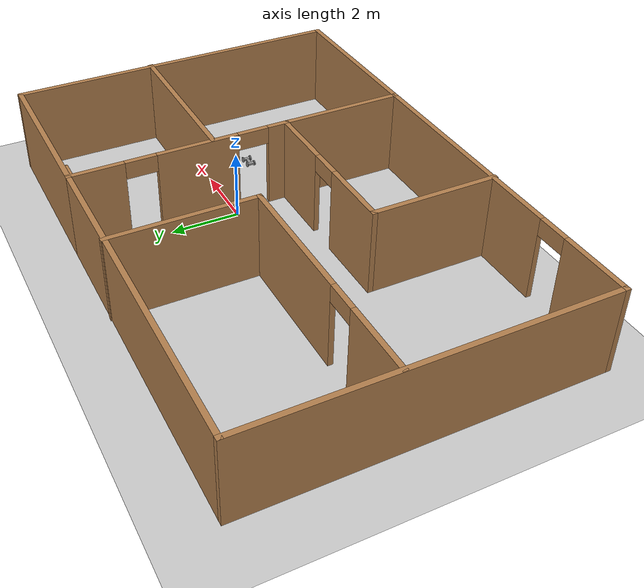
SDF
<sdf version="1.6">
 <world name="default">
  <model name="ground_plane">
   <static>1</static>
   <link name="link">
    <collision name="collision">
     <geometry><plane><normal>0 0 1</normal><size>100 100</size></plane></geometry>
     <surface><friction><ode><mu>100</mu><mu2>50</mu2></ode></friction></surface>
    </collision>
    <visual name="visual">
     <cast_shadows>0</cast_shadows>
     <geometry><plane><normal>0 0 1</normal><size>100 100</size></plane></geometry>
     <material>
      <script><uri>file://media/materials/scripts/gazebo.material</uri><name>Gazebo/Grey</name></script>
     </material>
    </visual>
   </link>
  </model>
  <model name="mybuilding">
   <pose>-2.23015 -0.308468 0 0 -0 0</pose>
   <link name="Wall_10">
    <pose>-3.92505 0.854 0 0 -0 0</pose>
    <visual name="Wall_10_Visual_0">
     <pose>-2.42075 0 1.25 0 -0 0</pose>
     <geometry><box><size>2.1585 0.15 2.5</size></box></geometry>
     <material>
      <script><uri>file://media/materials/scripts/gazebo.material</uri><name>Gazebo/Wood</name></script>
      <ambient>0.435294 0.796078 0.67451 1</ambient>
     </material>
    </visual>
    <collision name="Wall_10_Collision_0">
     <geometry><box><size>2.1585 0.15 2.5</size></box></geometry>
     <pose>-2.42075 0 1.25 0 -0 0</pose>
    </collision>
    <visual name="Wall_10_Visual_1">
     <pose>1.52925 0 1.25 0 -0 0</pose>
     <geometry><box><size>3.9415 0.15 2.5</size></box></geometry>
     <material>
      <script><uri>file://media/materials/scripts/gazebo.material</uri><name>Gazebo/Wood</name></script>
      <ambient>0.435294 0.796078 0.67451 1</ambient>
     </material>
    </visual>
    <collision name="Wall_10_Collision_1">
     <geometry><box><size>3.9415 0.15 2.5</size></box></geometry>
     <pose>1.52925 0 1.25 0 -0 0</pose>
    </collision>
    <visual name="Wall_10_Visual_2">
     <pose>-0.891495 0 2.25 0 -0 0</pose>
     <geometry><box><size>0.9 0.15 0.5</size></box></geometry>
     <material>
      <script><uri>file://media/materials/scripts/gazebo.material</uri><name>Gazebo/Wood</name></script>
      <ambient>0.435294 0.796078 0.67451 1</ambient>
     </material>
    </visual>
    <collision name="Wall_10_Collision_2">
     <geometry><box><size>0.9 0.15 0.5</size></box></geometry>
     <pose>-0.891495 0 2.25 0 -0 0</pose>
    </collision>
   </link>
   <link name="Wall_11">
    <collision name="Wall_11_Collision">
     <geometry><box><size>4.25 0.15 2.5</size></box></geometry>
     <pose>0 0 1.25 0 -0 0</pose>
    </collision>
    <visual name="Wall_11_Visual">
     <pose>0 0 1.25 0 -0 0</pose>
     <geometry><box><size>4.25 0.15 2.5</size></box></geometry>
     <material>
      <script><uri>file://media/materials/scripts/gazebo.material</uri><name>Gazebo/Wood</name></script>
      <ambient>0.435294 0.796078 0.67451 1</ambient>
     </material>
    </visual>
    <pose>-0.500053 2.904 0 0 -0 1.5708</pose>
   </link>
   <link name="Wall_13">
    <pose>0.042947 -1.354 0 0 -0 0</pose>
    <visual name="Wall_13_Visual_0">
     <pose>-1.44475 0 1.25 0 -0 0</pose>
     <geometry><box><size>2.1105 0.15 2.5</size></box></geometry>
     <material>
      <script><uri>file://media/materials/scripts/gazebo.material</uri><name>Gazebo/Wood</name></script>
      <ambient>0.435294 0.796078 0.67451 1</ambient>
     </material>
    </visual>
    <collision name="Wall_13_Collision_0">
     <geometry><box><size>2.1105 0.15 2.5</size></box></geometry>
     <pose>-1.44475 0 1.25 0 -0 0</pose>
    </collision>
    <visual name="Wall_13_Visual_1">
     <pose>1.50525 0 1.25 0 -0 0</pose>
     <geometry><box><size>1.9895 0.15 2.5</size></box></geometry>
     <material>
      <script><uri>file://media/materials/scripts/gazebo.material</uri><name>Gazebo/Wood</name></script>
      <ambient>0.435294 0.796078 0.67451 1</ambient>
     </material>
    </visual>
    <collision name="Wall_13_Collision_1">
     <geometry><box><size>1.9895 0.15 2.5</size></box></geometry>
     <pose>1.50525 0 1.25 0 -0 0</pose>
    </collision>
    <visual name="Wall_13_Visual_2">
     <pose>0.060505 0 2.25 0 -0 0</pose>
     <geometry><box><size>0.9 0.15 0.5</size></box></geometry>
     <material>
      <script><uri>file://media/materials/scripts/gazebo.material</uri><name>Gazebo/Wood</name></script>
      <ambient>0.435294 0.796078 0.67451 1</ambient>
     </material>
    </visual>
    <collision name="Wall_13_Collision_2">
     <geometry><box><size>0.9 0.15 0.5</size></box></geometry>
     <pose>0.060505 0 2.25 0 -0 0</pose>
    </collision>
   </link>
   <link name="Wall_15">
    <collision name="Wall_15_Collision">
     <geometry><box><size>3.75 0.15 2.5</size></box></geometry>
     <pose>0 0 1.25 0 -0 0</pose>
    </collision>
    <visual name="Wall_15_Visual">
     <pose>0 0 1.25 0 -0 0</pose>
     <geometry><box><size>3.75 0.15 2.5</size></box></geometry>
     <material>
      <script><uri>file://media/materials/scripts/gazebo.material</uri><name>Gazebo/Wood</name></script>
      <ambient>0.435294 0.796078 0.67451 1</ambient>
     </material>
    </visual>
    <pose>-2.38205 -3.154 0 0 0 -1.5708</pose>
   </link>
   <link name="Wall_17">
    <collision name="Wall_17_Collision">
     <geometry><box><size>5 0.15 2.5</size></box></geometry>
     <pose>0 0 1.25 0 -0 0</pose>
    </collision>
    <visual name="Wall_17_Visual">
     <pose>0 0 1.25 0 -0 0</pose>
     <geometry><box><size>5 0.15 2.5</size></box></geometry>
     <material>
      <script><uri>file://media/materials/scripts/gazebo.material</uri><name>Gazebo/Wood</name></script>
      <ambient>1 1 1 1</ambient>
     </material>
    </visual>
    <pose>4.90805 -4.921 0 0 -0 0</pose>
   </link>
   <link name="Wall_18">
    <collision name="Wall_18_Collision">
     <geometry><box><size>10 0.15 2.5</size></box></geometry>
     <pose>0 0 1.25 0 -0 0</pose>
    </collision>
    <visual name="Wall_18_Visual">
     <pose>0 0 1.25 0 -0 0</pose>
     <geometry><box><size>10 0.15 2.5</size></box></geometry>
     <material>
      <script><uri>file://media/materials/scripts/gazebo.material</uri><name>Gazebo/Wood</name></script>
      <ambient>1 1 1 1</ambient>
     </material>
    </visual>
    <pose>7.33305 0.004003 0 0 -0 1.5708</pose>
   </link>
   <link name="Wall_19">
    <collision name="Wall_19_Collision">
     <geometry><box><size>5 0.15 2.5</size></box></geometry>
     <pose>0 0 1.25 0 -0 0</pose>
    </collision>
    <visual name="Wall_19_Visual">
     <pose>0 0 1.25 0 -0 0</pose>
     <geometry><box><size>5 0.15 2.5</size></box></geometry>
     <material>
      <script><uri>file://media/materials/scripts/gazebo.material</uri><name>Gazebo/Wood</name></script>
      <ambient>0.435294 0.796078 0.67451 1</ambient>
     </material>
    </visual>
    <pose>4.90805 4.929 0 0 -0 3.14159</pose>
   </link>
   <link name="Wall_21">
    <collision name="Wall_21_Collision">
     <geometry><box><size>5 0.15 2.5</size></box></geometry>
     <pose>0 0 1.25 0 -0 0</pose>
    </collision>
    <visual name="Wall_21_Visual">
     <pose>0 0 1.25 0 -0 0</pose>
     <geometry><box><size>5 0.15 2.5</size></box></geometry>
     <material>
      <script><uri>file://media/materials/scripts/gazebo.material</uri><name>Gazebo/Wood</name></script>
      <ambient>0.435294 0.796078 0.67451 1</ambient>
     </material>
    </visual>
    <pose>4.94195 0.854 0 0 -0 0</pose>
   </link>
   <link name="Wall_5">
    <collision name="Wall_5_Collision">
     <geometry><box><size>10 0.15 2.5</size></box></geometry>
     <pose>0 0 1.25 0 -0 0</pose>
    </collision>
    <visual name="Wall_5_Visual">
     <pose>0 0 1.25 0 -0 0</pose>
     <geometry><box><size>10 0.15 2.5</size></box></geometry>
     <material>
      <script><uri>file://media/materials/scripts/gazebo.material</uri><name>Gazebo/Wood</name></script>
      <ambient>1 1 1 1</ambient>
     </material>
    </visual>
    <pose>-7.36695 0.004003 0 0 -0 1.5708</pose>
   </link>
   <link name="Wall_6">
    <collision name="Wall_6_Collision">
     <geometry><box><size>10 0.15 2.5</size></box></geometry>
     <pose>0 0 1.25 0 -0 0</pose>
    </collision>
    <visual name="Wall_6_Visual">
     <pose>0 0 1.25 0 -0 0</pose>
     <geometry><box><size>10 0.15 2.5</size></box></geometry>
     <material>
      <script><uri>file://media/materials/scripts/gazebo.material</uri><name>Gazebo/Wood</name></script>
      <ambient>1 1 1 1</ambient>
     </material>
    </visual>
    <pose>-2.44195 4.929 0 0 -0 0</pose>
   </link>
   <link name="Wall_7">
    <pose>2.48305 0.004003 0 0 0 -1.5708</pose>
    <visual name="Wall_7_Visual_0">
     <pose>-4.19877 0 1.25 0 -0 0</pose>
     <geometry><box><size>1.60246 0.15 2.5</size></box></geometry>
     <material>
      <script><uri>file://media/materials/scripts/gazebo.material</uri><name>Gazebo/Wood</name></script>
      <ambient>0.435294 0.796078 0.67451 1</ambient>
     </material>
    </visual>
    <collision name="Wall_7_Collision_0">
     <geometry><box><size>1.60246 0.15 2.5</size></box></geometry>
     <pose>-4.19877 0 1.25 0 -0 0</pose>
    </collision>
    <visual name="Wall_7_Visual_1">
     <pose>-1.30754 0 1.25 0 -0 0</pose>
     <geometry><box><size>2.38 0.15 2.5</size></box></geometry>
     <material>
      <script><uri>file://media/materials/scripts/gazebo.material</uri><name>Gazebo/Wood</name></script>
      <ambient>0.435294 0.796078 0.67451 1</ambient>
     </material>
    </visual>
    <collision name="Wall_7_Collision_1">
     <geometry><box><size>2.38 0.15 2.5</size></box></geometry>
     <pose>-1.30754 0 1.25 0 -0 0</pose>
    </collision>
    <visual name="Wall_7_Visual_2">
     <pose>2.89123 0 1.25 0 -0 0</pose>
     <geometry><box><size>4.21754 0.15 2.5</size></box></geometry>
     <material>
      <script><uri>file://media/materials/scripts/gazebo.material</uri><name>Gazebo/Wood</name></script>
      <ambient>0.435294 0.796078 0.67451 1</ambient>
     </material>
    </visual>
    <collision name="Wall_7_Collision_2">
     <geometry><box><size>4.21754 0.15 2.5</size></box></geometry>
     <pose>2.89123 0 1.25 0 -0 0</pose>
    </collision>
    <visual name="Wall_7_Visual_3">
     <pose>-2.94754 0 2.25 0 -0 0</pose>
     <geometry><box><size>0.9 0.15 0.5</size></box></geometry>
     <material>
      <script><uri>file://media/materials/scripts/gazebo.material</uri><name>Gazebo/Wood</name></script>
      <ambient>0.435294 0.796078 0.67451 1</ambient>
     </material>
    </visual>
    <collision name="Wall_7_Collision_3">
     <geometry><box><size>0.9 0.15 0.5</size></box></geometry>
     <pose>-2.94754 0 2.25 0 -0 0</pose>
    </collision>
    <visual name="Wall_7_Visual_4">
     <pose>0.332463 0 2.25 0 -0 0</pose>
     <geometry><box><size>0.9 0.15 0.5</size></box></geometry>
     <material>
      <script><uri>file://media/materials/scripts/gazebo.material</uri><name>Gazebo/Wood</name></script>
      <ambient>0.435294 0.796078 0.67451 1</ambient>
     </material>
    </visual>
    <collision name="Wall_7_Collision_4">
     <geometry><box><size>0.9 0.15 0.5</size></box></geometry>
     <pose>0.332463 0 2.25 0 -0 0</pose>
    </collision>
   </link>
   <link name="Wall_8">
    <pose>-2.44195 -4.921 0 0 -0 3.14159</pose>
    <visual name="Wall_8_Visual_0">
     <pose>-1.5177 0 1.25 0 -0 0</pose>
     <geometry><box><size>6.9646 0.15 2.5</size></box></geometry>
     <material>
      <script><uri>file://media/materials/scripts/gazebo.material</uri><name>Gazebo/Wood</name></script>
      <ambient>1 1 1 1</ambient>
     </material>
    </visual>
    <collision name="Wall_8_Collision_0">
     <geometry><box><size>6.9646 0.15 2.5</size></box></geometry>
     <pose>-1.5177 0 1.25 0 -0 0</pose>
    </collision>
    <visual name="Wall_8_Visual_1">
     <pose>3.9323 0 1.25 0 -0 0</pose>
     <geometry><box><size>2.1354 0.15 2.5</size></box></geometry>
     <material>
      <script><uri>file://media/materials/scripts/gazebo.material</uri><name>Gazebo/Wood</name></script>
      <ambient>1 1 1 1</ambient>
     </material>
    </visual>
    <collision name="Wall_8_Collision_1">
     <geometry><box><size>2.1354 0.15 2.5</size></box></geometry>
     <pose>3.9323 0 1.25 0 -0 0</pose>
    </collision>
    <visual name="Wall_8_Visual_2">
     <pose>2.4146 0 2.25 0 -0 0</pose>
     <geometry><box><size>0.9 0.15 0.5</size></box></geometry>
     <material>
      <script><uri>file://media/materials/scripts/gazebo.material</uri><name>Gazebo/Wood</name></script>
      <ambient>1 1 1 1</ambient>
     </material>
    </visual>
    <collision name="Wall_8_Collision_2">
     <geometry><box><size>0.9 0.15 0.5</size></box></geometry>
     <pose>2.4146 0 2.25 0 -0 0</pose>
    </collision>
   </link>
   <static>1</static>
  </model>
  <model name="robot_1">
   <link name="link_0">
    <pose>-0.15 0 -0 0 -0 0</pose>
    <inertial>
     <mass>1</mass>
     <inertia>
      <ixx>0.166667</ixx>
      <ixy>0</ixy>
      <ixz>0</ixz>
      <iyy>0.166667</iyy>
      <iyz>0</iyz>
      <izz>0.166667</izz>
     </inertia>
    </inertial>
    <visual name="visual">
     <geometry><box><size>0.1 0.2 0.05</size></box></geometry>
     <material>
      <lighting>1</lighting>
      <script><uri>file://media/materials/scripts/gazebo.material</uri><name>Gazebo/Grey</name></script>
      <ambient>0.3 0.3 0.3 1</ambient>
      <diffuse>0.7 0.7 0.7 1</diffuse>
      <specular>0.01 0.01 0.01 1</specular>
      <emissive>0 0 0 1</emissive>
      <shader type="vertex"><normal_map>__default__</normal_map></shader>
     </material>
    </visual>
    <collision name="collision">
     <geometry><box><size>0.1 0.2 0.05</size></box></geometry>
     <surface>
      <friction>
       <ode><mu>1</mu><mu2>1</mu2><fdir1>0 0 0</fdir1><slip1>0</slip1><slip2>0</slip2></ode>
       <torsional>
        <coefficient>1</coefficient>
        <patch_radius>0</patch_radius>
        <surface_radius>0</surface_radius>
        <use_patch_radius>1</use_patch_radius>
        <ode><slip>0</slip></ode>
       </torsional>
      </friction>
      <bounce><restitution_coefficient>0</restitution_coefficient><threshold>1e+06</threshold></bounce>
      <contact>
       <collide_without_contact>0</collide_without_contact>
       <collide_without_contact_bitmask>1</collide_without_contact_bitmask>
       <collide_bitmask>1</collide_bitmask>
       <ode>
        <soft_cfm>0</soft_cfm>
        <soft_erp>0.2</soft_erp>
        <kp>1e+13</kp>
        <kd>1</kd>
        <max_vel>0.01</max_vel>
        <min_depth>0</min_depth>
       </ode>
       <bullet>
        <split_impulse>1</split_impulse>
        <split_impulse_penetration_threshold>-0.01</split_impulse_penetration_threshold>
        <soft_cfm>0</soft_cfm>
        <soft_erp>0.2</soft_erp>
        <kp>1e+13</kp>
        <kd>1</kd>
       </bullet>
      </contact>
     </surface>
    </collision>
   </link>
   <link name="link_0_clone">
    <pose>0.15 0 -0 0 -0 0</pose>
    <inertial>
     <mass>1</mass>
     <inertia>
      <ixx>0.166667</ixx>
      <ixy>0</ixy>
      <ixz>0</ixz>
      <iyy>0.166667</iyy>
      <iyz>0</iyz>
      <izz>0.166667</izz>
     </inertia>
    </inertial>
    <visual name="visual">
     <geometry><box><size>0.1 0.2 0.05</size></box></geometry>
     <material>
      <lighting>1</lighting>
      <script><uri>file://media/materials/scripts/gazebo.material</uri><name>Gazebo/Grey</name></script>
      <ambient>0.3 0.3 0.3 1</ambient>
      <diffuse>0.7 0.7 0.7 1</diffuse>
      <specular>0.01 0.01 0.01 1</specular>
      <emissive>0 0 0 1</emissive>
      <shader type="vertex"><normal_map>__default__</normal_map></shader>
     </material>
    </visual>
    <collision name="collision">
     <geometry><box><size>0.1 0.2 0.05</size></box></geometry>
     <surface>
      <friction>
       <ode><mu>1</mu><mu2>1</mu2><fdir1>0 0 0</fdir1><slip1>0</slip1><slip2>0</slip2></ode>
       <torsional>
        <coefficient>1</coefficient>
        <patch_radius>0</patch_radius>
        <surface_radius>0</surface_radius>
        <use_patch_radius>1</use_patch_radius>
        <ode><slip>0</slip></ode>
       </torsional>
      </friction>
      <bounce><restitution_coefficient>0</restitution_coefficient><threshold>1e+06</threshold></bounce>
      <contact>
       <collide_without_contact>0</collide_without_contact>
       <collide_without_contact_bitmask>1</collide_without_contact_bitmask>
       <collide_bitmask>1</collide_bitmask>
       <ode>
        <soft_cfm>0</soft_cfm>
        <soft_erp>0.2</soft_erp>
        <kp>1e+13</kp>
        <kd>1</kd>
        <max_vel>0.01</max_vel>
        <min_depth>0</min_depth>
       </ode>
       <bullet>
        <split_impulse>1</split_impulse>
        <split_impulse_penetration_threshold>-0.01</split_impulse_penetration_threshold>
        <soft_cfm>0</soft_cfm>
        <soft_erp>0.2</soft_erp>
        <kp>1e+13</kp>
        <kd>1</kd>
       </bullet>
      </contact>
     </surface>
    </collision>
   </link>
   <link name="link_1">
    <inertial>
     <mass>1</mass>
     <inertia>
      <ixx>0.166667</ixx>
      <ixy>0</ixy>
      <ixz>0</ixz>
      <iyy>0.166667</iyy>
      <iyz>0</iyz>
      <izz>0.166667</izz>
     </inertia>
    </inertial>
    <visual name="visual">
     <geometry><box><size>0.2 0.1 0.05</size></box></geometry>
     <material>
      <lighting>1</lighting>
      <script><uri>file://media/materials/scripts/gazebo.material</uri><name>Gazebo/Grey</name></script>
      <ambient>0.3 0.3 0.3 1</ambient>
      <diffuse>0.7 0.7 0.7 1</diffuse>
      <specular>0.01 0.01 0.01 1</specular>
      <emissive>0 0 0 1</emissive>
      <shader type="vertex"><normal_map>__default__</normal_map></shader>
     </material>
    </visual>
    <collision name="collision">
     <geometry><box><size>0.2 0.1 0.05</size></box></geometry>
     <surface>
      <friction>
       <ode><mu>1</mu><mu2>1</mu2><fdir1>0 0 0</fdir1><slip1>0</slip1><slip2>0</slip2></ode>
       <torsional>
        <coefficient>1</coefficient>
        <patch_radius>0</patch_radius>
        <surface_radius>0</surface_radius>
        <use_patch_radius>1</use_patch_radius>
        <ode><slip>0</slip></ode>
       </torsional>
      </friction>
      <bounce><restitution_coefficient>0</restitution_coefficient><threshold>1e+06</threshold></bounce>
      <contact>
       <collide_without_contact>0</collide_without_contact>
       <collide_without_contact_bitmask>1</collide_without_contact_bitmask>
       <collide_bitmask>1</collide_bitmask>
       <ode>
        <soft_cfm>0</soft_cfm>
        <soft_erp>0.2</soft_erp>
        <kp>1e+13</kp>
        <kd>1</kd>
        <max_vel>0.01</max_vel>
        <min_depth>0</min_depth>
       </ode>
       <bullet>
        <split_impulse>1</split_impulse>
        <split_impulse_penetration_threshold>-0.01</split_impulse_penetration_threshold>
        <soft_cfm>0</soft_cfm>
        <soft_erp>0.2</soft_erp>
        <kp>1e+13</kp>
        <kd>1</kd>
       </bullet>
      </contact>
     </surface>
    </collision>
   </link>
   <link name="link_2">
    <pose>-0.15 -0.115008 -0 1.5707 -0 0</pose>
    <inertial>
     <mass>1</mass>
     <inertia><ixx>0.145833</ixx><ixy>0</ixy><ixz>0</ixz><iyy>0.145833</iyy><iyz>0</iyz><izz>0.125</izz></inertia>
    </inertial>
    <visual name="visual">
     <geometry><cylinder><radius>0.08</radius><length>0.03</length></cylinder></geometry>
     <material>
      <lighting>1</lighting>
      <script><uri>file://media/materials/scripts/gazebo.material</uri><name>Gazebo/Grey</name></script>
      <ambient>0.3 0.3 0.3 1</ambient>
      <diffuse>0.7 0.7 0.7 1</diffuse>
      <specular>0.01 0.01 0.01 1</specular>
      <emissive>0 0 0 1</emissive>
      <shader type="vertex"><normal_map>__default__</normal_map></shader>
     </material>
    </visual>
    <collision name="collision">
     <geometry><cylinder><radius>0.08</radius><length>0.03</length></cylinder></geometry>
     <surface>
      <friction>
       <ode><mu>1</mu><mu2>1</mu2><fdir1>0 0 0</fdir1><slip1>0</slip1><slip2>0</slip2></ode>
       <torsional>
        <coefficient>1</coefficient>
        <patch_radius>0</patch_radius>
        <surface_radius>0</surface_radius>
        <use_patch_radius>1</use_patch_radius>
        <ode><slip>0</slip></ode>
       </torsional>
      </friction>
      <bounce><restitution_coefficient>0</restitution_coefficient><threshold>1e+06</threshold></bounce>
      <contact>
       <collide_without_contact>0</collide_without_contact>
       <collide_without_contact_bitmask>1</collide_without_contact_bitmask>
       <collide_bitmask>1</collide_bitmask>
       <ode>
        <soft_cfm>0</soft_cfm>
        <soft_erp>0.2</soft_erp>
        <kp>1e+13</kp>
        <kd>1</kd>
        <max_vel>0.01</max_vel>
        <min_depth>0</min_depth>
       </ode>
       <bullet>
        <split_impulse>1</split_impulse>
        <split_impulse_penetration_threshold>-0.01</split_impulse_penetration_threshold>
        <soft_cfm>0</soft_cfm>
        <soft_erp>0.2</soft_erp>
        <kp>1e+13</kp>
        <kd>1</kd>
       </bullet>
      </contact>
     </surface>
    </collision>
   </link>
   <link name="link_2_clone">
    <pose>-0.15 0.115008 -0 1.5707 -0 0</pose>
    <inertial>
     <mass>1</mass>
     <inertia><ixx>0.145833</ixx><ixy>0</ixy><ixz>0</ixz><iyy>0.145833</iyy><iyz>0</iyz><izz>0.125</izz></inertia>
    </inertial>
    <visual name="visual">
     <geometry><cylinder><radius>0.08</radius><length>0.03</length></cylinder></geometry>
     <material>
      <lighting>1</lighting>
      <script><uri>file://media/materials/scripts/gazebo.material</uri><name>Gazebo/Grey</name></script>
      <ambient>0.3 0.3 0.3 1</ambient>
      <diffuse>0.7 0.7 0.7 1</diffuse>
      <specular>0.01 0.01 0.01 1</specular>
      <emissive>0 0 0 1</emissive>
      <shader type="vertex"><normal_map>__default__</normal_map></shader>
     </material>
    </visual>
    <collision name="collision">
     <geometry><cylinder><radius>0.08</radius><length>0.03</length></cylinder></geometry>
     <surface>
      <friction>
       <ode><mu>1</mu><mu2>1</mu2><fdir1>0 0 0</fdir1><slip1>0</slip1><slip2>0</slip2></ode>
       <torsional>
        <coefficient>1</coefficient>
        <patch_radius>0</patch_radius>
        <surface_radius>0</surface_radius>
        <use_patch_radius>1</use_patch_radius>
        <ode><slip>0</slip></ode>
       </torsional>
      </friction>
      <bounce><restitution_coefficient>0</restitution_coefficient><threshold>1e+06</threshold></bounce>
      <contact>
       <collide_without_contact>0</collide_without_contact>
       <collide_without_contact_bitmask>1</collide_without_contact_bitmask>
       <collide_bitmask>1</collide_bitmask>
       <ode>
        <soft_cfm>0</soft_cfm>
        <soft_erp>0.2</soft_erp>
        <kp>1e+13</kp>
        <kd>1</kd>
        <max_vel>0.01</max_vel>
        <min_depth>0</min_depth>
       </ode>
       <bullet>
        <split_impulse>1</split_impulse>
        <split_impulse_penetration_threshold>-0.01</split_impulse_penetration_threshold>
        <soft_cfm>0</soft_cfm>
        <soft_erp>0.2</soft_erp>
        <kp>1e+13</kp>
        <kd>1</kd>
       </bullet>
      </contact>
     </surface>
    </collision>
   </link>
   <link name="link_2_clone_clone">
    <pose>0.15 -0.115008 -0 1.5707 -0 0</pose>
    <inertial>
     <mass>1</mass>
     <inertia><ixx>0.145833</ixx><ixy>0</ixy><ixz>0</ixz><iyy>0.145833</iyy><iyz>0</iyz><izz>0.125</izz></inertia>
    </inertial>
    <visual name="visual">
     <geometry><cylinder><radius>0.08</radius><length>0.03</length></cylinder></geometry>
     <material>
      <lighting>1</lighting>
      <script><uri>file://media/materials/scripts/gazebo.material</uri><name>Gazebo/Grey</name></script>
      <ambient>0.3 0.3 0.3 1</ambient>
      <diffuse>0.7 0.7 0.7 1</diffuse>
      <specular>0.01 0.01 0.01 1</specular>
      <emissive>0 0 0 1</emissive>
      <shader type="vertex"><normal_map>__default__</normal_map></shader>
     </material>
    </visual>
    <collision name="collision">
     <geometry><cylinder><radius>0.08</radius><length>0.03</length></cylinder></geometry>
     <surface>
      <friction>
       <ode><mu>1</mu><mu2>1</mu2><fdir1>0 0 0</fdir1><slip1>0</slip1><slip2>0</slip2></ode>
       <torsional>
        <coefficient>1</coefficient>
        <patch_radius>0</patch_radius>
        <surface_radius>0</surface_radius>
        <use_patch_radius>1</use_patch_radius>
        <ode><slip>0</slip></ode>
       </torsional>
      </friction>
      <bounce><restitution_coefficient>0</restitution_coefficient><threshold>1e+06</threshold></bounce>
      <contact>
       <collide_without_contact>0</collide_without_contact>
       <collide_without_contact_bitmask>1</collide_without_contact_bitmask>
       <collide_bitmask>1</collide_bitmask>
       <ode>
        <soft_cfm>0</soft_cfm>
        <soft_erp>0.2</soft_erp>
        <kp>1e+13</kp>
        <kd>1</kd>
        <max_vel>0.01</max_vel>
        <min_depth>0</min_depth>
       </ode>
       <bullet>
        <split_impulse>1</split_impulse>
        <split_impulse_penetration_threshold>-0.01</split_impulse_penetration_threshold>
        <soft_cfm>0</soft_cfm>
        <soft_erp>0.2</soft_erp>
        <kp>1e+13</kp>
        <kd>1</kd>
       </bullet>
      </contact>
     </surface>
    </collision>
   </link>
   <link name="link_2_clone_clone_0">
    <pose>0.15 0.115008 -0 1.5707 -0 0</pose>
    <inertial>
     <mass>1</mass>
     <inertia><ixx>0.145833</ixx><ixy>0</ixy><ixz>0</ixz><iyy>0.145833</iyy><iyz>0</iyz><izz>0.125</izz></inertia>
    </inertial>
    <visual name="visual">
     <geometry><cylinder><radius>0.08</radius><length>0.03</length></cylinder></geometry>
     <material>
      <lighting>1</lighting>
      <script><uri>file://media/materials/scripts/gazebo.material</uri><name>Gazebo/Grey</name></script>
      <ambient>0.3 0.3 0.3 1</ambient>
      <diffuse>0.7 0.7 0.7 1</diffuse>
      <specular>0.01 0.01 0.01 1</specular>
      <emissive>0 0 0 1</emissive>
      <shader type="vertex"><normal_map>__default__</normal_map></shader>
     </material>
    </visual>
    <collision name="collision">
     <geometry><cylinder><radius>0.08</radius><length>0.03</length></cylinder></geometry>
     <surface>
      <friction>
       <ode><mu>1</mu><mu2>1</mu2><fdir1>0 0 0</fdir1><slip1>0</slip1><slip2>0</slip2></ode>
       <torsional>
        <coefficient>1</coefficient>
        <patch_radius>0</patch_radius>
        <surface_radius>0</surface_radius>
        <use_patch_radius>1</use_patch_radius>
        <ode><slip>0</slip></ode>
       </torsional>
      </friction>
      <bounce><restitution_coefficient>0</restitution_coefficient><threshold>1e+06</threshold></bounce>
      <contact>
       <collide_without_contact>0</collide_without_contact>
       <collide_without_contact_bitmask>1</collide_without_contact_bitmask>
       <collide_bitmask>1</collide_bitmask>
       <ode>
        <soft_cfm>0</soft_cfm>
        <soft_erp>0.2</soft_erp>
        <kp>1e+13</kp>
        <kd>1</kd>
        <max_vel>0.01</max_vel>
        <min_depth>0</min_depth>
       </ode>
       <bullet>
        <split_impulse>1</split_impulse>
        <split_impulse_penetration_threshold>-0.01</split_impulse_penetration_threshold>
        <soft_cfm>0</soft_cfm>
        <soft_erp>0.2</soft_erp>
        <kp>1e+13</kp>
        <kd>1</kd>
       </bullet>
      </contact>
     </surface>
    </collision>
   </link>
   <joint name="link_0_JOINT_4" type="revolute">
    <parent>link_0</parent>
    <child>link_2</child>
    <axis>
     <xyz>0 0 1</xyz>
     <use_parent_model_frame>0</use_parent_model_frame>
     <limit>
      <lower>-1.79769e+308</lower>
      <upper>1.79769e+308</upper>
      <effort>-1</effort>
      <velocity>-1</velocity>
     </limit>
     <dynamics>
      <spring_reference>0</spring_reference>
      <spring_stiffness>0</spring_stiffness>
      <damping>0</damping>
      <friction>0</friction>
     </dynamics>
    </axis>
    <physics>
     <ode><limit><cfm>0</cfm><erp>0.2</erp></limit><suspension><cfm>0</cfm><erp>0.2</erp></suspension></ode>
    </physics>
   </joint>
   <joint name="link_0_JOINT_5" type="revolute">
    <parent>link_0</parent>
    <child>link_2_clone</child>
    <axis>
     <xyz>0 0 1</xyz>
     <use_parent_model_frame>0</use_parent_model_frame>
     <limit>
      <lower>-1.79769e+308</lower>
      <upper>1.79769e+308</upper>
      <effort>-1</effort>
      <velocity>-1</velocity>
     </limit>
     <dynamics>
      <spring_reference>0</spring_reference>
      <spring_stiffness>0</spring_stiffness>
      <damping>0</damping>
     </dynamics>
    </axis>
    <physics>
     <ode><limit><cfm>0</cfm><erp>0.2</erp></limit><suspension><cfm>0</cfm><erp>0.2</erp></suspension></ode>
    </physics>
   </joint>
   <joint name="link_0_JOINT_6" type="revolute">
    <parent>link_0</parent>
    <child>link_2</child>
    <axis>
     <xyz>0 0 1</xyz>
     <use_parent_model_frame>0</use_parent_model_frame>
     <limit>
      <lower>-1.79769e+308</lower>
      <upper>1.79769e+308</upper>
      <effort>-1</effort>
      <velocity>-1</velocity>
     </limit>
     <dynamics>
      <spring_reference>0</spring_reference>
      <spring_stiffness>0</spring_stiffness>
      <damping>0</damping>
     </dynamics>
    </axis>
    <physics>
     <ode><limit><cfm>0</cfm><erp>0.2</erp></limit><suspension><cfm>0</cfm><erp>0.2</erp></suspension></ode>
    </physics>
   </joint>
   <joint name="link_0_clone_JOINT_7" type="revolute">
    <parent>link_0_clone</parent>
    <child>link_2_clone_clone</child>
    <axis>
     <xyz>0 0 1</xyz>
     <use_parent_model_frame>0</use_parent_model_frame>
     <limit>
      <lower>-1.79769e+308</lower>
      <upper>1.79769e+308</upper>
      <effort>-1</effort>
      <velocity>-1</velocity>
     </limit>
     <dynamics>
      <spring_reference>0</spring_reference>
      <spring_stiffness>0</spring_stiffness>
      <damping>0</damping>
     </dynamics>
    </axis>
    <physics>
     <ode><limit><cfm>0</cfm><erp>0.2</erp></limit><suspension><cfm>0</cfm><erp>0.2</erp></suspension></ode>
    </physics>
   </joint>
   <joint name="link_0_clone_JOINT_8" type="revolute">
    <parent>link_0_clone</parent>
    <child>link_2_clone_clone_0</child>
    <axis>
     <xyz>0 0 1</xyz>
     <use_parent_model_frame>0</use_parent_model_frame>
     <limit>
      <lower>-1.79769e+308</lower>
      <upper>1.79769e+308</upper>
      <effort>-1</effort>
      <velocity>-1</velocity>
     </limit>
     <dynamics>
      <spring_reference>0</spring_reference>
      <spring_stiffness>0</spring_stiffness>
      <damping>0</damping>
     </dynamics>
    </axis>
    <physics>
     <ode><limit><cfm>0</cfm><erp>0.2</erp></limit><suspension><cfm>0</cfm><erp>0.2</erp></suspension></ode>
    </physics>
   </joint>
   <joint name="link_1_JOINT_0" type="revolute">
    <parent>link_1</parent>
    <child>link_0</child>
    <axis>
     <xyz>1 0 0</xyz>
     <use_parent_model_frame>0</use_parent_model_frame>
     <limit>
      <lower>-1.79769e+308</lower>
      <upper>1.79769e+308</upper>
      <effort>-1</effort>
      <velocity>-1</velocity>
     </limit>
     <dynamics>
      <spring_reference>0</spring_reference>
      <spring_stiffness>0</spring_stiffness>
      <damping>0</damping>
     </dynamics>
    </axis>
    <physics>
     <ode><limit><cfm>0</cfm><erp>0.2</erp></limit><suspension><cfm>0</cfm><erp>0.2</erp></suspension></ode>
    </physics>
   </joint>
   <joint name="link_1_JOINT_1" type="revolute">
    <parent>link_1</parent>
    <child>link_0_clone</child>
    <axis>
     <xyz>1 0 0</xyz>
     <use_parent_model_frame>0</use_parent_model_frame>
     <limit>
      <lower>-1.79769e+308</lower>
      <upper>1.79769e+308</upper>
      <effort>-1</effort>
      <velocity>-1</velocity>
     </limit>
     <dynamics>
      <spring_reference>0</spring_reference>
      <spring_stiffness>0</spring_stiffness>
      <damping>0</damping>
     </dynamics>
    </axis>
    <physics>
     <ode><limit><cfm>0</cfm><erp>0.2</erp></limit><suspension><cfm>0</cfm><erp>0.2</erp></suspension></ode>
    </physics>
   </joint>
   <static>0</static>
   <pose>2.32134 -1.41248 0.080001 1e-06 1e-06 -5.2e-05</pose>
  </model>
  <model name="bookshelf">
   <static>1</static>
   <link name="link">
    <inertial><mass>1</mass></inertial>
    <collision name="back">
     <pose>0 0.005 0.6 0 -0 0</pose>
     <geometry><box><size>0.9 0.01 1.2</size></box></geometry>
    </collision>
    <visual name="visual1">
     <pose>0 0.005 0.6 0 -0 0</pose>
     <geometry><box><size>0.9 0.01 1.2</size></box></geometry>
     <material>
      <script><uri>file://media/materials/scripts/gazebo.material</uri><name>Gazebo/Wood</name></script>
     </material>
    </visual>
    <collision name="left_side">
     <pose>0.45 -0.195 0.6 0 -0 0</pose>
     <geometry><box><size>0.02 0.4 1.2</size></box></geometry>
    </collision>
    <visual name="visual2">
     <pose>0.45 -0.195 0.6 0 -0 0</pose>
     <geometry><box><size>0.02 0.4 1.2</size></box></geometry>
     <material>
      <script><uri>file://media/materials/scripts/gazebo.material</uri><name>Gazebo/Wood</name></script>
     </material>
    </visual>
    <collision name="right_side">
     <pose>-0.45 -0.195 0.6 0 -0 0</pose>
     <geometry><box><size>0.02 0.4 1.2</size></box></geometry>
    </collision>
    <visual name="visual3">
     <pose>-0.45 -0.195 0.6 0 -0 0</pose>
     <geometry><box><size>0.02 0.4 1.2</size></box></geometry>
     <material>
      <script><uri>file://media/materials/scripts/gazebo.material</uri><name>Gazebo/Wood</name></script>
     </material>
    </visual>
    <collision name="bottom">
     <pose>0 -0.195 0.03 0 -0 0</pose>
     <geometry><box><size>0.88 0.4 0.06</size></box></geometry>
    </collision>
    <visual name="visual4">
     <pose>0 -0.195 0.03 0 -0 0</pose>
     <geometry><box><size>0.88 0.4 0.06</size></box></geometry>
     <material>
      <script><uri>file://media/materials/scripts/gazebo.material</uri><name>Gazebo/Wood</name></script>
     </material>
    </visual>
    <collision name="top">
     <pose>0 -0.195 1.19 0 -0 0</pose>
     <geometry><box><size>0.88 0.4 0.02</size></box></geometry>
    </collision>
    <visual name="visual5">
     <pose>0 -0.195 1.19 0 -0 0</pose>
     <geometry><box><size>0.88 0.4 0.02</size></box></geometry>
     <material>
      <script><uri>file://media/materials/scripts/gazebo.material</uri><name>Gazebo/Wood</name></script>
     </material>
    </visual>
    <collision name="low_shelf">
     <pose>0 -0.195 0.43 0 -0 0</pose>
     <geometry><box><size>0.88 0.4 0.02</size></box></geometry>
    </collision>
    <visual name="visual6">
     <pose>0 -0.195 0.43 0 -0 0</pose>
     <geometry><box><size>0.88 0.4 0.02</size></box></geometry>
     <material>
      <script><uri>file://media/materials/scripts/gazebo.material</uri><name>Gazebo/Wood</name></script>
     </material>
    </visual>
    <collision name="high_shelf">
     <pose>0 -0.195 0.8 0 -0 0</pose>
     <geometry><box><size>0.88 0.4 0.02</size></box></geometry>
    </collision>
    <visual name="visual7">
     <pose>0 -0.195 0.8 0 -0 0</pose>
     <geometry><box><size>0.88 0.4 0.02</size></box></geometry>
     <material>
      <script><uri>file://media/materials/scripts/gazebo.material</uri><name>Gazebo/Wood</name></script>
     </material>
    </visual>
   </link>
   <pose>2.38461 4.43677 0 0 -0 0</pose>
  </model>
 </world>
</sdf>
